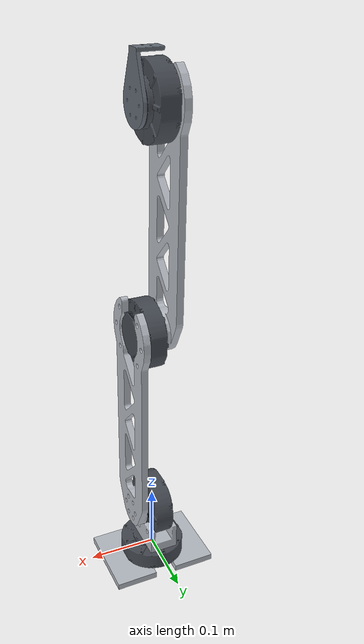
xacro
<?xml version="1.0"?>
<robot name="qmini_arm" xmlns:xacro="http://www.ros.org/wiki/xacro">
  <!--
    Generated from Qmini-arm-2+1+3.SLDASM.
    Joint zero matches the saved CAD pose. All meshes and dimensions use SI units.
  -->

  <xacro:property name="joint_1_limit" value="3.141592654"/>
  <xacro:property name="joint_2_limit" value="1.75"/>
  <xacro:property name="joint_3_limit" value="2.62"/>
  <xacro:property name="joint_4_limit" value="2.094395102"/>
  <xacro:property name="joint_1_soft_limit" value="2.967059728"/>
  <xacro:property name="joint_2_soft_limit" value="1.57"/>
  <xacro:property name="joint_3_soft_limit" value="2.007128640"/>
  <xacro:property name="joint_4_soft_limit" value="2.0"/>
  <xacro:property name="effort_limit" value="23.7"/>
  <xacro:property name="velocity_limit" value="3.0"/>

  <material name="motor_gray">
    <color rgba="0.27 0.29 0.32 1.0"/>
  </material>
  <material name="link_silver">
    <color rgba="0.72 0.74 0.77 1.0"/>
  </material>
  <material name="tool_gray">
    <color rgba="0.40 0.43 0.47 1.0"/>
  </material>

  <xacro:macro name="inertial_block" params="mass xyz ixx ixy ixz iyy iyz izz">
    <inertial>
      <origin xyz="${xyz}" rpy="0 0 0"/>
      <mass value="${mass}"/>
      <inertia
        ixx="${ixx}" ixy="${ixy}" ixz="${ixz}"
        iyy="${iyy}" iyz="${iyz}" izz="${izz}"/>
    </inertial>
  </xacro:macro>

  <xacro:macro name="mesh_visual" params="file xyz rpy material">
    <visual>
      <origin xyz="${xyz}" rpy="${rpy}"/>
      <geometry>
        <mesh filename="meshes/visual/${file}"/>
      </geometry>
      <material name="${material}"/>
    </visual>
  </xacro:macro>

  <xacro:macro name="motor_collision" params="xyz rpy">
    <collision>
      <origin xyz="${xyz}" rpy="${rpy}"/>
      <geometry>
        <cylinder radius="0.04825" length="0.0423"/>
      </geometry>
    </collision>
  </xacro:macro>

  <xacro:macro name="box_collision" params="xyz rpy size">
    <collision>
      <origin xyz="${xyz}" rpy="${rpy}"/>
      <geometry>
        <box size="${size}"/>
      </geometry>
    </collision>
  </xacro:macro>

  <xacro:macro name="arm_joint" params="name parent child xyz rpy limit soft_limit">
    <joint name="${name}" type="revolute">
      <origin xyz="${xyz}" rpy="${rpy}"/>
      <parent link="${parent}"/>
      <child link="${child}"/>
      <axis xyz="1 0 0"/>
      <limit
        lower="${-limit}" upper="${limit}"
        effort="${effort_limit}" velocity="${velocity_limit}"/>
      <dynamics damping="0.08" friction="0.0"/>
      <safety_controller
        soft_lower_limit="${-soft_limit}"
        soft_upper_limit="${soft_limit}"
        k_position="20.0" k_velocity="2.0"/>
    </joint>
  </xacro:macro>

  <!-- Keep the CAD-derived chain untouched and correct its global yaw here. -->
  <link name="world"/>
  <joint name="world_to_base" type="fixed">
    <origin xyz="0 0 0" rpy="0.74 -1.57 0"/>
    <parent link="world"/>
    <child link="base_link"/>
  </joint>

  <!-- Fixed GO-M8010-6 motor housing plus the new paired base plate. -->
  <link name="base_link">
    <xacro:inertial_block
      mass="0.594063035" xyz="-0.001443936 0.000095279 0.000025880"
      ixx="0.000935107" ixy="-0.000000883" ixz="-0.000000309"
      iyy="0.000550380" iyz="-0.000090250" izz="0.000529948"/>
    <xacro:mesh_visual
      file="motor.stl" xyz="0 0 0" rpy="0 0 0" material="motor_gray"/>
    <xacro:mesh_visual
      file="base_pair.stl"
      xyz="-0.013149996 -0.040727332 -0.045814406"
      rpy="1.570796327 -0.726688605 -1.570796327" material="link_silver"/>
    <xacro:motor_collision xyz="0 0 0" rpy="0 1.570796327 0"/>
    <collision>
      <origin xyz="-0.018149996 0.000000291 -0.000000098" rpy="0 -0.726688605 -1.570796327"/>
      <geometry>
        <box size="0.11 0.01 0.15888"/>
      </geometry>
    </collision>
  </link>

  <!-- Output of motor 1: first orthogonal bracket and motor 2 housing. -->
  <link name="link_1">
    <xacro:inertial_block
      mass="0.567450382" xyz="0.076902896 -0.000540190 -0.000692581"
      ixx="0.000373485" ixy="0.000001852" ixz="0.000002991"
      iyy="0.000594890" iyz="0.000130888" izz="0.000625051"/>
    <xacro:mesh_visual
      file="joint_bracket.stl"
      xyz="0.021150004 0.000000013 -0.000000002"
      rpy="0 -0.726682211 -1.570796327" material="link_silver"/>
    <xacro:mesh_visual
      file="motor.stl"
      xyz="0.082449884 0.000464880 0.000523357"
      rpy="-0.844107722 0.844114116 -1.570796327" material="motor_gray"/>
    <xacro:box_collision
      xyz="0.041150004 0.000000013 -0.000000002"
      rpy="0 -0.726682211 -1.570796327" size="0.09 0.04 0.043"/>
    <xacro:motor_collision
      xyz="0.082449884 0.000464880 0.000523357"
      rpy="-2.555167956 0.457182902 2.555159402"/>
  </link>

  <!-- Output of motor 2: first long arm and motor 3 housing. -->
  <link name="link_2">
    <xacro:inertial_block
      mass="0.676212997" xyz="0.016355333 0.193045983 -0.171512178"
      ixx="0.005975646" ixy="0.000310486" ixz="-0.000274800"
      iyy="0.002778247" iyz="0.002539658" izz="0.003380604"/>
    <xacro:mesh_visual
      file="arm_link.stl"
      xyz="0.026150004 0.224214862 -0.199318093"
      rpy="3.141592654 0.726682211 1.570796327" material="link_silver"/>
    <xacro:mesh_visual
      file="motor.stl"
      xyz="0.013000008 0.224214994 -0.199318371"
      rpy="1.453370820 0 -3.141592654" material="motor_gray"/>
    <xacro:box_collision
      xyz="0.028650004 0.117945600 -0.104848942"
      rpy="3.141592654 0.726682211 1.570796327" size="0.3003 0.015 0.075"/>
    <xacro:motor_collision
      xyz="0.013000008 0.224214994 -0.199318371"
      rpy="1.570796327 0.117425510 -1.570796327"/>
  </link>

  <!-- Output of motor 3: second long arm and motor 4 housing. -->
  <link name="link_3">
    <xacro:inertial_block
      mass="0.676213000" xyz="0.016353625 -0.193059219 0.171524730"
      ixx="0.005963547500" ixy="-0.000294104322" ixz="0.000262012657"
      iyy="0.002770304330" iyz="0.002545239940" izz="0.003376592910"/>
    <xacro:mesh_visual
      file="arm_link.stl"
      xyz="0.026150004 -0.224214836 0.199318089"
      rpy="0 -0.726682211 -1.570796327" material="link_silver"/>
    <xacro:mesh_visual
      file="motor.stl"
      xyz="0.013000008 -0.224214968 0.199318367"
      rpy="-1.688221837 0 -3.141592654" material="motor_gray"/>
    <xacro:box_collision
      xyz="0.028650004 -0.117945574 0.104848938"
      rpy="0 -0.726682211 -1.570796327" size="0.3003 0.015 0.075"/>
    <xacro:motor_collision
      xyz="0.013000008 -0.224214968 0.199318367"
      rpy="-1.570796327 -0.117425510 1.570796327"/>
  </link>

  <!-- Fixed end-effector mounting bracket attached to motor 4 output. -->
  <link name="link_6">
    <xacro:inertial_block
      mass="0.016653600" xyz="0.021295905 -0.013071630 0.011629218"
      ixx="0.000014346087" ixy="-0.000001170045" ixz="0.000001043159"
      iyy="0.000007453285" iyz="0.000004348922" izz="0.000008467991"/>
    <xacro:mesh_visual
      file="tool_mount.stl"
      xyz="0.026150004 0.000000013 -0.000000002"
      rpy="-3.141592654 -0.726682211 -1.570796327" material="tool_gray"/>
    <xacro:box_collision
      xyz="0.008650004 -0.011444917 0.010174086"
      rpy="-3.141592654 -0.726682211 -1.570796327" size="0.0894 0.035 0.059"/>
  </link>

  <link name="tool0"/>

  <xacro:arm_joint
    name="joint_1" parent="base_link" child="link_1"
    xyz="0 0 0" rpy="0 0 0"
    limit="${joint_1_limit}" soft_limit="${joint_1_soft_limit}"/>
  <xacro:arm_joint
    name="joint_2" parent="link_1" child="link_2"
    xyz="0.082449884 0.000464880 0.000523357"
    rpy="0.7259 0.844114116 -1.570796327"
    limit="${joint_2_limit}" soft_limit="${joint_2_soft_limit}"/>
  <xacro:arm_joint
    name="joint_3" parent="link_2" child="link_3"
    xyz="0.013000008 0.224214994 -0.199318371"
    rpy="1.453370820 0 -3.141592654"
    limit="${joint_3_limit}" soft_limit="${joint_3_soft_limit}"/>
  <xacro:arm_joint
    name="joint_4" parent="link_3" child="link_6"
    xyz="0.013000008 -0.224214968 0.199318367"
    rpy="-1.68822 0 -3.141592654"
    limit="${joint_4_limit}" soft_limit="${joint_4_soft_limit}"/>

  <joint name="tool0_fixed_joint" type="fixed">
    <origin
      xyz="0.008650004 -0.044843211 0.039863329"
      rpy="-3.141592653 -0.726675817 -1.570796327"/>
    <parent link="link_6"/>
    <child link="tool0"/>
  </joint>
</robot>
